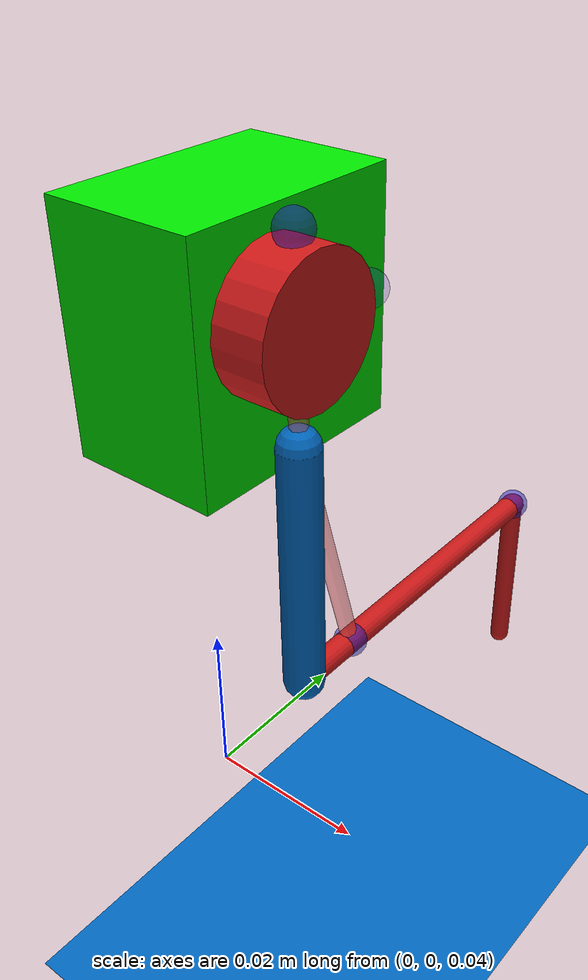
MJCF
<mujoco>

    <include file="basic_scene.xml" />

    <worldbody>
        <light diffuse=".5 .5 .5" pos="0 0 3" dir="0 0 -1"/>
        <geom type="plane" size="0 0 0.03" material="matplane"/>
        <camera name="body_cam" mode="fixed" pos="0.3 -0.01 0.1" euler="90 90 0"/>
        <body pos="0 0 0.1">
            <include file="leg_rl_assets/rl_t3.xml"/>
        </body>
    </worldbody>

    <contact>
        <exclude body1="main_leg_rl" body2="servo2_rl"/>
    </contact>

    <include file="leg_rl_assets/rl_t3_tendon.xml"/>

    <include file="leg_rl_assets/rl_sensor_actuator.xml"/>
</mujoco>

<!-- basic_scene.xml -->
<mujoco>
    <compiler angle="degree"/>

    <asset>
        <texture type="skybox" builtin="gradient" rgb1="1 1 1" rgb2=".6 .8 1" width="256" height="256"/>
        <texture name="texplane" type="2d" builtin="checker" rgb1=".2 .3 .4" rgb2=".1 0.15 0.2" width="512" height="512" mark="cross" markrgb=".8 .8 .8"/>

        <material name="matplane" reflectance="0" texture="texplane" texrepeat="2 2" texuniform="true"/>
    </asset>

    <option timestep="0.002" o_solimp="0.9 0.95 0.001 0.1 2" o_solref="0.008 2" cone="elliptic"
        impratio="3.0" noslip_iterations="5" noslip_tolerance="1e-8">
        <flag override="enable"/>
    </option>

    <default>
        <geom type="box" rgba="0 0.4 0.74 1.0"/>
    </default>
</mujoco>

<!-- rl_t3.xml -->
<mujoco>

    <!-- Front left leg type 3 -->
    <!-- IMPORTANT MODEL PARAMETERS
        'lr0':0.02678, 'rp': 0.008, 'd1': 0.0128, 'l1': 0.03,
        'l2': 0.0084, 'l3': 0.045, 'l4': 0.025,'theta3':110*np.pi/180
    -->

        <body pos="0 0.0055 0">
            <geom name="main_box_rl" mass=".040" type="box" size=".0091 .014 .014" rgba="0 .9 0 1"/>

            <!-- Extension with slider for jumping -->
            <!-- joint name="rail" type="slide" axis="0 0 1"/ -->
            <!-- joint name="rail" type="slide" axis="0 0 1" damping="0.01" frictionloss="0.01" pos="0 -0.3325 0"/-->
            <body name ="main_leg_rl" pos="0.0136 -0.0055 -0.0085">

                <joint name="m1_rl" pos="0 0 0" type="hinge" axis="1 0 0" damping="0.01" armature="0.00065" limited="true" range="-90 90" ref="0"/>
                <geom name="leg1_rl" mass="0.001" type="capsule" fromto="0 0 0 0 0 -0.03" size="0.0024"/>
                <site name="router_hip_rl" pos="0 0 0" size="0.002" rgba=".1 .1 .8 0.5"/>
                <site name="knee_start_rl" pos="0 0 -0.023" size="0.002" rgba=".1 .1 .8 0.5"/>
                <body name="lower_leg_rl" pos="0 0 -0.03">
                    <joint name="knee1_rl" pos="0 0 0" type="hinge" axis="1 0 0" damping="0.005" armature="0.000065" limited="true" range="-80 80"/>
                    <geom name="leg2_rl" type="capsule" mass="0.0015" fromto="0 0 0 0 0.045 0" size="0.0015" rgba=".8 .1 .1 1"/>
                    <site name="m2_pickup_rl" pos="0 0.0084 0" size="0.002" rgba=".1 .1 .8 0.5"/>
                    <site name="knee_pickup_rl" pos="0 0.045 0" size="0.002" rgba=".1 .1 .8 0.5"/>
                    <body name="ankle_rl" pos="0 .045 0">
                        <joint name="ankle_rl" pos="0 0 0" type="hinge" axis="1 0 0" damping="0.005" stiffness="0.1" armature="0.000065" limited="true" range="-90 90"/>
                        <geom name="foot_rl" type="capsule" mass="0.001" fromto="0 0 0 0 0 -0.023" size="0.0013" rgba=".8 .1 .1 1" friction="1.4 0.005 0.0001" />
                    </body>
                </body>
            </body>

            <site name="x1_rl" pos="0.0136 0.0055 0.0043" size="0.002" rgba=".1 .1 .8 0.2"/>
            <body name="servo2_rl" pos="0.0136 -0.0055 0.0043">
                <geom name="motor2_rl" type="cylinder" mass="0.002" fromto="-0.003 0 0 0.003 0 0" size="0.008" rgba=".8 .1 .1 1" />
                <joint name="m2_rl" pos="0 0 0" type="hinge" axis="1 0 0" armature="0.00065" damping="0.01" limited="true" range="-37 37" ref="0"/>

                <site name="s1_rl" pos="0.0 0.0 0.009" size="0.002" rgba=".1 .1 .8 0.5"/>
            </body>
        </body>
</mujoco>

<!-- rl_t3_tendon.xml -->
<mujoco>
    <tendon>
        <spatial name="m2_tendon_rl" limited="true" range="0 0.06" width="0.001" rgba="1 .4 .4 0.5">
            <site site="s1_rl"/>
            <geom geom="motor2_rl" sidesite="x1_rl"/>
            <site site="router_hip_rl"/>
            <site site="m2_pickup_rl"/>
        </spatial>
    </tendon>
</mujoco>

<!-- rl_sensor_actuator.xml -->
<mujoco>
    <sensor>
        <jointpos name="m1_rl" joint="m1_rl"/>
        <jointpos name="m2_rl" joint="m2_rl"/>
    </sensor>

    <actuator>
        <position name="m1_rl" gear="1" ctrllimited="true" ctrlrange="-1.57 1.57"  forcelimited="true"  forcerange="-.4 .4" joint="m1_rl" kp="200"/>
        <position name="m2_rl" gear="1" ctrllimited="true"  ctrlrange="-3.14 3.14 " forcelimited="true"  forcerange="-.4 .4" joint="m2_rl" kp="200"/>
    </actuator>
</mujoco>
